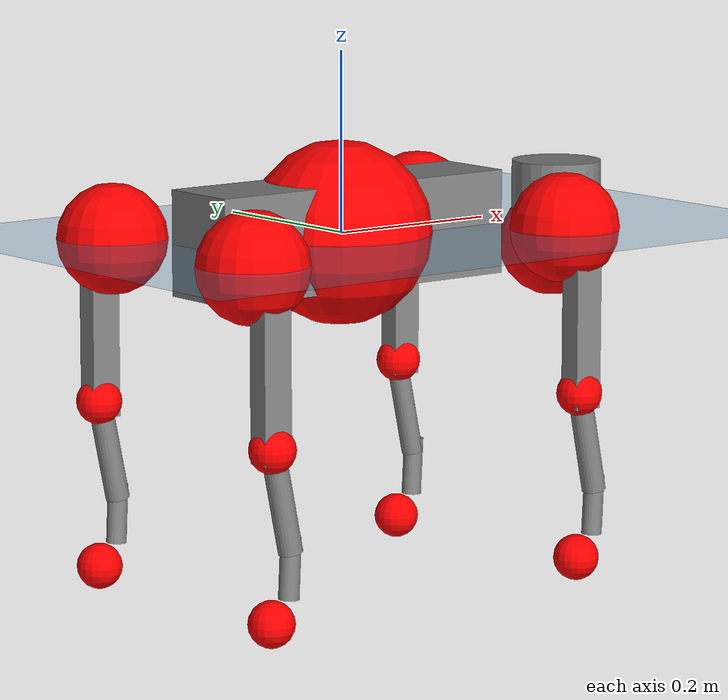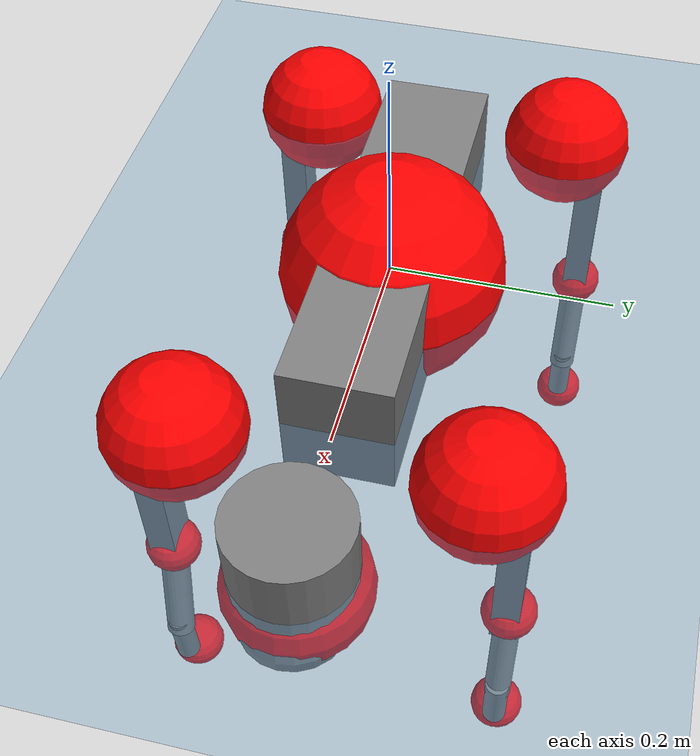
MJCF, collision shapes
<mujoco model="go2">
  <compiler angle="radian" assetdir="assets" balanceinertia="true" inertiafromgeom="false"/>

  <option timestep="0.005" density="1.2" viscosity="2e-05"/>

  <size nkey="1"/>

  <visual>
    <quality shadowsize="8192"/>
    <map shadowclip="0.5"/>
  </visual>

  <default>
    <default class="/">
      <geom contype="0" conaffinity="0" group="1" solref="-1000 -80"/>
      <site size="0.01 0.005 0.005" group="5"/>
      <general forcelimited="true" biastype="affine" gainprm="20" biasprm="0 -20 -0.5"/>
      <default class="go2">
        <joint armature="0.01" damping="0.01" frictionloss="0.2"/>
        <geom condim="1" margin="0.001"/>
        <default class="visual">
          <geom type="mesh" group="2"/>
        </default>
        <default class="collision">
          <geom group="3"/>
          <default class="foot">
            <geom size="0.022 0 0" condim="6" priority="1" friction="0.8 0.02 0.01" solimp="0.015 1 0.022"/>
          </default>
        </default>
        <default class="reward_collision_sphere">
          <geom group="5" rgba="1 0 0 1"/>
        </default>
      </default>
    </default>
  </default>

  <asset>
    <texture type="skybox" colorspace="auto" name="//unnamed_texture_0" builtin="gradient" rgb1="0.95 0.95 0.95" rgb2="0.95 0.95 0.95" width="100" height="600"/>
    <texture type="2d" colorspace="auto" name="texplane" builtin="checker" rgb1="0.345 0.575 0.748" rgb2="0.345 0.575 0.748" markrgb="1 1 1" width="512" height="512"/>
    <material name="MatPlane" class="/" texture="texplane" texuniform="true" texrepeat="2 2" specular="0.9"/>
    <material name="metal" class="/" rgba="0.9 0.95 0.95 1"/>
    <material name="black" class="/" rgba="0 0 0 1"/>
    <material name="white" class="/"/>
    <material name="gray" class="/" rgba="0.671705 0.692426 0.77427 1"/>
    <mesh name="base_0" class="/" file="base_0.obj"/>
    <mesh name="base_1" class="/" file="base_1.obj"/>
    <mesh name="base_2" class="/" file="base_2.obj"/>
    <mesh name="base_3" class="/" file="base_3.obj"/>
    <mesh name="base_4" class="/" file="base_4.obj"/>
    <mesh name="hip_0" class="/" file="hip_0.obj"/>
    <mesh name="hip_1" class="/" file="hip_1.obj"/>
    <mesh name="thigh_0" class="/" file="thigh_0.obj"/>
    <mesh name="thigh_1" class="/" file="thigh_1.obj"/>
    <mesh name="thigh_mirror_0" class="/" file="thigh_mirror_0.obj"/>
    <mesh name="thigh_mirror_1" class="/" file="thigh_mirror_1.obj"/>
    <mesh name="calf_0" class="/" file="calf_0.obj"/>
    <mesh name="calf_1" class="/" file="calf_1.obj"/>
    <mesh name="calf_mirror_0" class="/" file="calf_mirror_0.obj"/>
    <mesh name="calf_mirror_1" class="/" file="calf_mirror_1.obj"/>
    <mesh name="foot" class="/" file="foot.obj"/>
  </asset>

  <worldbody>
    <geom name="floor" class="/" size="100 100 0.125" type="plane" group="0" material="MatPlane"/>
    <light name="toplight_shadow" class="/" pos="0 0 5" dir="0.0990148 0.0990148 -0.990148" type="directional" ambient="0.04 0.04 0.04" diffuse="0.55 0.55 0.55" specular="0.12 0.12 0.12"/>
    <light name="toplight_fill" class="/" pos="0 0 5" dir="0.0990148 0.0990148 -0.990148" type="directional" castshadow="false" ambient="0.04 0.04 0.04" diffuse="0.3 0.3 0.3" specular="0.08 0.08 0.08"/>
    <body name="trunk" childclass="go2" pos="-0.000146557 0.00271888 0.000395298" quat="0.999999 0.000752928 -0.000609238 -0.000285982">
      <inertial pos="0.0230658 -0.000296944 -0.00472436" quat="0.00894462 0.712582 -0.0100132 0.70146" mass="7.49402" diaginertia="0.174273 0.150644 0.0122802"/>
      <joint name="//unnamed_joint_0" type="free" armature="0" damping="0" frictionloss="0"/>
      <geom name="//unnamed_geom_1" class="visual" material="black" mesh="base_0"/>
      <geom name="//unnamed_geom_2" class="visual" material="black" mesh="base_1"/>
      <geom name="//unnamed_geom_3" class="visual" material="black" mesh="base_2"/>
      <geom name="//unnamed_geom_4" class="visual" material="white" mesh="base_3"/>
      <geom name="//unnamed_geom_5" class="visual" material="gray" mesh="base_4"/>
      <geom name="trunk_1" class="collision" size="0.19166 0.0476349 0.0580789" type="box"/>
      <geom name="trunk_2" class="collision" size="0.0509464 0.0458517" pos="0.313846 0 0.00872646" type="cylinder"/>
      <geom name="trunk_3" class="collision" size="0.0478896" pos="0.322655 0 -0.0523588"/>
      <geom name="//unnamed_geom_9" class="reward_collision_sphere" size="0.101893"/>
      <geom name="//unnamed_geom_10" class="reward_collision_sphere" size="0.0611356" pos="0.30834 0 -0.0392691"/>
      <site name="imu" pos="-0.0167943 -0.00359274 0.0434336" size="0.0101893"/>
      <camera name="track" pos="0 -2.16585 0" quat="0.707107 0.707107 0 0" mode="trackcom"/>
      <camera name="ego_camera" pos="0.343578 0 0.0392691" quat="-0.5 -0.5 0.5 0.5"/>
      <body name="FL_hip" pos="0.21214 0.0503015 -0.00140541" quat="1 -3.17292e-05 -4.81685e-05 7.50594e-05">
        <inertial pos="-0.00521332 -0.000305206 0.000626091" quat="0.4975 0.498855 0.505797 0.497801" mass="0.709248" diaginertia="0.00141734 0.000880359 0.000244175"/>
        <joint name="FL_hip_joint" pos="0 0 0" axis="0.999913 -0.00260491 -0.012951" stiffness="0.00960808" range="-1.04246 1.05097" armature="0.0108823" damping="0.0152112" frictionloss="0.230898"/>
        <geom name="//unnamed_geom_11" class="visual" material="metal" mesh="hip_0"/>
        <geom name="//unnamed_geom_12" class="visual" material="gray" mesh="hip_1"/>
        <geom name="//unnamed_geom_13" class="collision" size="0.0468707 0.0203785" pos="0 0.0866339 0" quat="0.707107 0.707107 0 0" type="cylinder"/>
        <geom name="//unnamed_geom_14" class="reward_collision_sphere" size="0.0611356" pos="0 0.0758046 0"/>
        <body name="FL_thigh" pos="-0.00230701 0.103792 -0.00136297" quat="0.999999 0.000725483 0.000598117 0.00103484">
          <inertial pos="-0.00418323 -0.0240575 -0.0268031" quat="0.824997 0.0783613 -0.0125134 0.559538" mass="1.16775" diaginertia="0.00920945 0.0084041 0.000435283"/>
          <joint name="FL_thigh_joint" pos="0 0 0" axis="-0.00457283 0.999913 0.0123966" range="-1.5156 3.48543" armature="0.0105319" damping="0" frictionloss="0.179616"/>
          <geom name="//unnamed_geom_15" class="visual" material="metal" mesh="thigh_0"/>
          <geom name="//unnamed_geom_16" class="visual" material="gray" mesh="thigh_1"/>
          <geom name="//unnamed_geom_17" class="collision" size="0.108516 0.0124819 0.0173218" pos="0 0 -0.0929368" quat="0.707107 0 0.707107 0" type="box"/>
          <body name="FL_calf" pos="-0.000964849 0.0017449 -0.185657" quat="1 -0.00078035 0.000283423 0.000145631">
            <inertial pos="0.0095077 -0.00225251 -0.121848" quat="0.710537 0.00537801 -0.00322982 0.703632" mass="0.269838" diaginertia="0.00244243 0.00223797 2.74861e-05"/>
            <joint name="FL_calf_joint" pos="0 0 0" axis="-0.00114874 0.999977 0.00672005" stiffness="0.00855395" range="-2.72362 -0.856032" armature="0.0100018" damping="0" frictionloss="0.204135"/>
            <geom name="//unnamed_geom_18" class="visual" material="gray" mesh="calf_0"/>
            <geom name="//unnamed_geom_19" class="visual" material="black" mesh="calf_1"/>
            <geom name="FL_calf0" class="collision" size="0.0122271 0.0611356" pos="0.0088097 0 -0.0523588" quat="0.994493 0 -0.104807 0" type="cylinder"/>
            <geom name="//unnamed_geom_21" class="collision" size="0.0112082 0.0331151" pos="0.0220243 0 -0.129152" quat="0.999688 0 0.0249974 0" type="cylinder"/>
            <geom name="//unnamed_geom_22" class="visual" pos="0 0 -0.185874" quat="1 0 0 0" material="black" mesh="foot"/>
            <geom name="FL_foot" class="foot" size="0.0225135" pos="-0.00220243 0 -0.185874"/>
            <geom name="//unnamed_geom_24" class="reward_collision_sphere" size="0.0254732"/>
            <geom name="//unnamed_geom_25" class="reward_collision_sphere" size="0.0254732" pos="-0.00220243 0 -0.185874"/>
            <site name="FL_foot" class="foot" pos="-0.00220243 0 -0.185874" size="0.0101893"/>
          </body>
        </body>
      </body>
      <body name="FR_hip" pos="0.214761 -0.0521429 0.000395336" quat="1 1.73932e-05 4.71559e-05 5.96596e-06">
        <inertial pos="-0.00751551 0.00033595 0.00137139" quat="0.500608 0.512609 0.49724 0.48926" mass="0.714829" diaginertia="0.001423 0.000854285 0.00024018"/>
        <joint name="FR_hip_joint" pos="0 0 0" axis="1 -0.000148769 -0.000178217" stiffness="0.00327913" range="-1.03398 1.05359" armature="0.0101124" damping="0.00807604" frictionloss="0.198406"/>
        <geom name="//unnamed_geom_26" class="visual" pos="0 1.83185e-09 7.85718e-08" quat="4.63268e-05 1 0 0" material="metal" mesh="hip_0"/>
        <geom name="//unnamed_geom_27" class="visual" pos="0 2.96965e-09 -1.94338e-07" quat="4.63268e-05 1 0 0" material="gray" mesh="hip_1"/>
        <geom name="//unnamed_geom_28" class="collision" size="0.0468707 0.0203785" pos="0 -0.0866339 0" quat="0.707107 0.707107 0 0" type="cylinder"/>
        <geom name="//unnamed_geom_29" class="reward_collision_sphere" size="0.0611356" pos="0 -0.0758046 0"/>
        <body name="FR_thigh" pos="0.00084886 -0.10459 0.00272397" quat="1 0.000134851 -8.17607e-06 0.000103853">
          <inertial pos="-0.00665727 0.021743 -0.0261657" quat="0.550311 -0.0196267 0.0865173 0.830233" mass="1.25594" diaginertia="0.00969562 0.00910116 0.00046058"/>
          <joint name="FR_thigh_joint" pos="0 0 0" axis="-0.000669765 -0.999968 -0.00795467" stiffness="0.0117783" range="-3.50318 1.62369" armature="0.00890292" damping="0.0104327" frictionloss="0.219468"/>
          <geom name="//unnamed_geom_30" class="visual" material="metal" mesh="thigh_mirror_0"/>
          <geom name="//unnamed_geom_31" class="visual" material="gray" mesh="thigh_mirror_1"/>
          <geom name="//unnamed_geom_32" class="collision" size="0.108516 0.0124819 0.0173218" pos="0 0 -0.0929368" quat="0.707107 0 0.707107 0" type="box"/>
          <body name="FR_calf" pos="-1.38222e-05 0.00239263 -0.184989" quat="1 -0.000372812 0.000416493 0.000599386">
            <inertial pos="0.00432064 -0.00131284 -0.122872" quat="0.703099 -0.00273002 0.00795266 0.711042" mass="0.250728" diaginertia="0.00246187 0.00216108 2.60367e-05"/>
            <joint name="FR_calf_joint" pos="0 0 0" axis="-0.012303 -0.99992 0.00299011" range="0.858101 2.72978" armature="0.0105836" damping="0.00514314" frictionloss="0.204211"/>
            <geom name="//unnamed_geom_33" class="visual" material="gray" mesh="calf_mirror_0"/>
            <geom name="//unnamed_geom_34" class="visual" material="black" mesh="calf_mirror_1"/>
            <geom name="FR_calf0" class="collision" size="0.0132461 0.0611356" pos="0.0110121 0 -0.0523588" quat="0.995004 0 -0.0998334 0" type="cylinder"/>
            <geom name="//unnamed_geom_36" class="collision" size="0.0112082 0.0331151" pos="0.0220243 0 -0.129152" quat="0.999688 0 0.0249974 0" type="cylinder"/>
            <geom name="//unnamed_geom_37" class="visual" pos="0 0 -0.185874" quat="1 0 0 0" material="black" mesh="foot"/>
            <geom name="FR_foot" class="foot" size="0.0196221" pos="-0.00220243 0 -0.185874"/>
            <geom name="//unnamed_geom_39" class="reward_collision_sphere" size="0.0254732"/>
            <geom name="//unnamed_geom_40" class="reward_collision_sphere" size="0.0254732" pos="-0.00220243 0 -0.185874"/>
            <site name="FR_foot" class="foot" pos="-0.00220243 0 -0.185874" size="0.0101893"/>
          </body>
        </body>
      </body>
      <body name="RL_hip" pos="-0.215955 0.0495494 -0.00223327" quat="1 0.000373331 -9.05768e-05 -3.1849e-07">
        <inertial pos="0.0049781 0.00431527 -0.000362318" quat="0.505341 0.498744 0.497191 0.498685" mass="0.694556" diaginertia="0.00139427 0.000894407 0.000242352"/>
        <joint name="RL_hip_joint" pos="0 0 0" axis="-0.999915 -0.0127961 -0.00232918" range="-1.01279 1.10037" armature="0.0102771" damping="0.00897516" frictionloss="0.17701"/>
        <geom name="//unnamed_geom_41" class="visual" pos="-1.99118e-09 0 -3.90316e-07" quat="4.63268e-05 0 1 0" material="metal" mesh="hip_0"/>
        <geom name="//unnamed_geom_42" class="visual" pos="-3.22793e-09 0 -3.46155e-07" quat="4.63268e-05 0 1 0" material="gray" mesh="hip_1"/>
        <geom name="//unnamed_geom_43" class="collision" size="0.0468707 0.0203785" pos="0 0.0866339 0" quat="0.707107 0.707107 0 0" type="cylinder"/>
        <geom name="//unnamed_geom_44" class="reward_collision_sphere" size="0.0611356" pos="0 0.0758046 0"/>
        <body name="RL_thigh" pos="0.00234842 0.105558 -0.000399012" quat="0.999999 3.15236e-05 -0.000824438 -0.0011118">
          <inertial pos="-0.00238929 -0.0254453 -0.0292856" quat="0.827355 0.0816089 -0.0219043 0.555288" mass="1.26871" diaginertia="0.00959334 0.00880158 0.000464557"/>
          <joint name="RL_thigh_joint" pos="0 0 0" axis="0.000984238 0.999999 -0.00111004" stiffness="0.000686638" range="-0.487981 4.5848" armature="0.00974904" damping="0.0123699" frictionloss="0.208448"/>
          <geom name="//unnamed_geom_45" class="visual" material="metal" mesh="thigh_0"/>
          <geom name="//unnamed_geom_46" class="visual" material="gray" mesh="thigh_1"/>
          <geom name="//unnamed_geom_47" class="collision" size="0.108516 0.0124819 0.0173218" pos="0 0 -0.0929368" quat="0.707107 0 0.707107 0" type="box"/>
          <body name="RL_calf" pos="-0.00179436 0.000220111 -0.184474" quat="0.999999 -1.85806e-05 -0.000906734 -0.000502531">
            <inertial pos="0.0067764 -0.00122921 -0.12608" quat="0.715965 0.0112209 -0.00239982 0.698042" mass="0.255606" diaginertia="0.00243078 0.0020963 2.64517e-05"/>
            <joint name="RL_calf_joint" pos="0 0 0" axis="-0.0207742 0.999777 0.00368031" range="-2.68656 -0.875054" armature="0.0112063" damping="0" frictionloss="0.193231"/>
            <geom name="//unnamed_geom_48" class="visual" material="gray" mesh="calf_0"/>
            <geom name="//unnamed_geom_49" class="visual" material="black" mesh="calf_1"/>
            <geom name="RL_calf0" class="collision" size="0.0132461 0.0611356" pos="0.0110121 0 -0.0523588" quat="0.995004 0 -0.0998334 0" type="cylinder"/>
            <geom name="//unnamed_geom_51" class="collision" size="0.0112082 0.0331151" pos="0.0220243 0 -0.129152" quat="0.999688 0 0.0249974 0" type="cylinder"/>
            <geom name="//unnamed_geom_52" class="visual" pos="0 0 -0.185874" quat="1 0 0 0" material="black" mesh="foot"/>
            <geom name="RL_foot" class="foot" size="0.0213767" pos="-0.00220243 0 -0.185874"/>
            <geom name="//unnamed_geom_54" class="reward_collision_sphere" size="0.0254732"/>
            <geom name="//unnamed_geom_55" class="reward_collision_sphere" size="0.0254732" pos="-0.00220243 0 -0.185874"/>
            <site name="RL_foot" class="foot" pos="-0.00220243 0 -0.185874" size="0.0101893"/>
          </body>
        </body>
      </body>
      <body name="RR_hip" pos="-0.211292 -0.0482832 -0.00330004" quat="0.999999 0.00110268 -0.000294174 -0.000658841">
        <inertial pos="0.00753671 0.000512427 -0.000641614" quat="0.499405 0.501478 0.494699 0.504368" mass="0.703793" diaginertia="0.00144903 0.000894079 0.000245152"/>
        <joint name="RR_hip_joint" pos="0 0 0" axis="-0.99997 -0.00321579 -0.00701557" range="-1.04284 1.09951" armature="0.00888379" damping="0.0196954" frictionloss="0.194902"/>
        <geom name="//unnamed_geom_56" class="visual" pos="1.99054e-09 1.83185e-09 -4.68888e-07" quat="2.14617e-09 4.63268e-05 4.63268e-05 -1" material="metal" mesh="hip_0"/>
        <geom name="//unnamed_geom_57" class="visual" pos="3.2295e-09 2.96965e-09 -1.51817e-07" quat="2.14617e-09 4.63268e-05 4.63268e-05 -1" material="gray" mesh="hip_1"/>
        <geom name="//unnamed_geom_58" class="collision" size="0.0468707 0.0203785" pos="0 -0.0866339 0" quat="0.707107 0.707107 0 0" type="cylinder"/>
        <geom name="//unnamed_geom_59" class="reward_collision_sphere" size="0.0611356" pos="0 -0.0758046 0"/>
        <body name="RR_thigh" pos="-0.000366879 -0.106106 -0.00109682" quat="0.999999 -0.00129117 -0.000372693 -0.000560459">
          <inertial pos="-0.00196625 0.0247351 -0.0261835" quat="0.55219 -0.0289571 0.0902386 0.828314" mass="1.1766" diaginertia="0.00964657 0.00868386 0.00042837"/>
          <joint name="RR_thigh_joint" pos="0 0 0" axis="-0.0202862 -0.999789 -0.00311927" range="-4.54408 0.576997" armature="0.010413" damping="0.0102528" frictionloss="0.177001"/>
          <geom name="//unnamed_geom_60" class="visual" material="metal" mesh="thigh_mirror_0"/>
          <geom name="//unnamed_geom_61" class="visual" material="gray" mesh="thigh_mirror_1"/>
          <geom name="//unnamed_geom_62" class="collision" size="0.108516 0.0124819 0.0173218" pos="0 0 -0.0929368" quat="0.707107 0 0.707107 0" type="box"/>
          <body name="RR_calf" pos="0.00196493 0.000357994 -0.187619" quat="1 -0.000267287 9.8978e-05 0.00043349">
            <inertial pos="0.00691633 0.00232116 -0.124496" quat="0.702671 -0.00182911 0.00138303 0.711511" mass="0.256607" diaginertia="0.00235504 0.00218482 2.70121e-05"/>
            <joint name="RR_calf_joint" pos="0 0 0" axis="-0.00278088 -0.999991 0.00307599" range="0.783716 2.70387" armature="0.0103486" damping="0.0218853" frictionloss="0.19203"/>
            <geom name="//unnamed_geom_63" class="visual" material="gray" mesh="calf_mirror_0"/>
            <geom name="//unnamed_geom_64" class="visual" material="black" mesh="calf_mirror_1"/>
            <geom name="RR_calf0" class="collision" size="0.0132461 0.0611356" pos="0.0110121 0 -0.0523588" quat="0.995004 0 -0.0998334 0" type="cylinder"/>
            <geom name="//unnamed_geom_66" class="collision" size="0.0112082 0.0331151" pos="0.0220243 0 -0.129152" quat="0.999688 0 0.0249974 0" type="cylinder"/>
            <geom name="//unnamed_geom_67" class="visual" pos="0 0 -0.185874" quat="1 0 0 0" material="black" mesh="foot"/>
            <geom name="RR_foot" class="foot" size="0.0208907" pos="-0.00220243 0 -0.185874"/>
            <geom name="//unnamed_geom_69" class="reward_collision_sphere" size="0.0254732"/>
            <geom name="//unnamed_geom_70" class="reward_collision_sphere" size="0.0254732" pos="-0.00220243 0 -0.185874"/>
            <site name="RR_foot" class="foot" pos="-0.00220243 0 -0.185874" size="0.0101893"/>
          </body>
        </body>
      </body>
    </body>
  </worldbody>

  <contact>
    <pair class="/" geom1="floor" geom2="FL_foot" name="//unnamed_contact_0"/>
    <pair class="/" geom1="floor" geom2="FR_foot" name="//unnamed_contact_1"/>
    <pair class="/" geom1="floor" geom2="RL_foot" name="//unnamed_contact_2"/>
    <pair class="/" geom1="floor" geom2="RR_foot" name="//unnamed_contact_3"/>
  </contact>

  <actuator>
    <general name="FL_hip" class="/" joint="FL_hip_joint" forcerange="-24.3967 24.3967" gainprm="20.6082" biasprm="0 -20.6082 -0.540086"/>
    <general name="FL_thigh" class="/" joint="FL_thigh_joint" forcerange="-23.7383 23.7383" gainprm="20.6082" biasprm="0 -20.6082 -0.540086"/>
    <general name="FL_calf" class="/" joint="FL_calf_joint" forcerange="-50.9497 50.9497" gainprm="20.6082" biasprm="0 -20.6082 -0.540086"/>
    <general name="FR_hip" class="/" joint="FR_hip_joint" forcerange="-24.0009 24.0009" gainprm="20.6082" biasprm="0 -20.6082 -0.540086"/>
    <general name="FR_thigh" class="/" joint="FR_thigh_joint" forcerange="-24.3787 24.3787" gainprm="20.6082" biasprm="0 -20.6082 -0.540086"/>
    <general name="FR_calf" class="/" joint="FR_calf_joint" forcerange="-49.3612 49.3612" gainprm="20.6082" biasprm="0 -20.6082 -0.540086"/>
    <general name="RL_hip" class="/" joint="RL_hip_joint" forcerange="-23.8257 23.8257" gainprm="20.6082" biasprm="0 -20.6082 -0.540086"/>
    <general name="RL_thigh" class="/" joint="RL_thigh_joint" forcerange="-26.053 26.053" gainprm="20.6082" biasprm="0 -20.6082 -0.540086"/>
    <general name="RL_calf" class="/" joint="RL_calf_joint" forcerange="-41.8437 41.8437" gainprm="20.6082" biasprm="0 -20.6082 -0.540086"/>
    <general name="RR_hip" class="/" joint="RR_hip_joint" forcerange="-24.705 24.705" gainprm="20.6082" biasprm="0 -20.6082 -0.540086"/>
    <general name="RR_thigh" class="/" joint="RR_thigh_joint" forcerange="-26.3644 26.3644" gainprm="20.6082" biasprm="0 -20.6082 -0.540086"/>
    <general name="RR_calf" class="/" joint="RR_calf_joint" forcerange="-49.93 49.93" gainprm="20.6082" biasprm="0 -20.6082 -0.540086"/>
  </actuator>

  <sensor>
    <gyro site="imu" name="imu_angular_velocity"/>
    <velocimeter site="imu" name="imu_linear_velocity"/>
    <framelinvel objtype="site" objname="FL_foot" name="FL_foot_global_linear_velocity"/>
    <framelinvel objtype="site" objname="FR_foot" name="FR_foot_global_linear_velocity"/>
    <framelinvel objtype="site" objname="RL_foot" name="RL_foot_global_linear_velocity"/>
    <framelinvel objtype="site" objname="RR_foot" name="RR_foot_global_linear_velocity"/>
  </sensor>

  <keyframe>
    <key name="home" qpos="0 0 0.325 1 0 0 0 0.1 0.8 -1.5 -0.1 -0.8 1.5 -0.1 0.8 -1.5 0.1 -0.8 1.5"/>
  </keyframe>
</mujoco>
